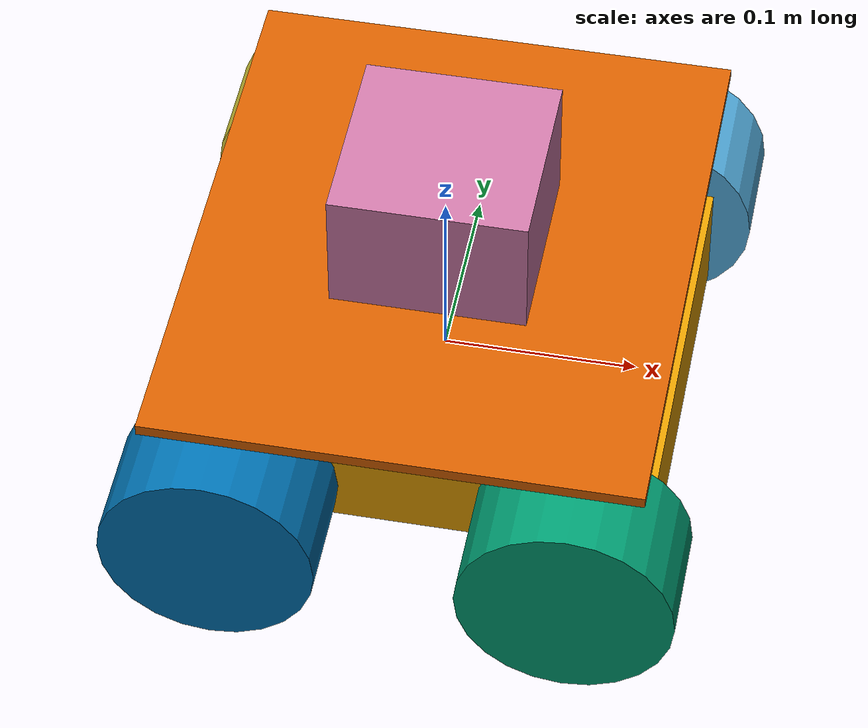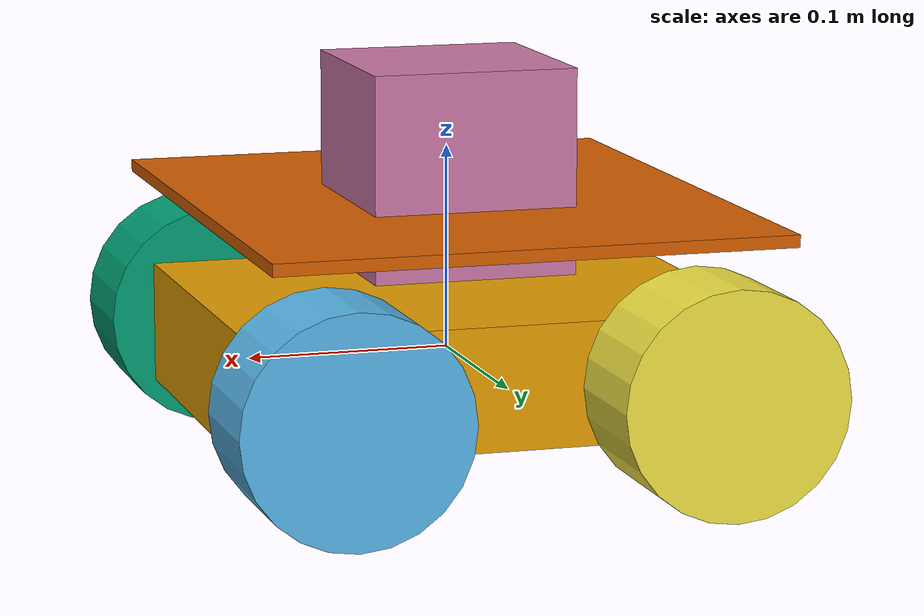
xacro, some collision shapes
<?xml version='1.0'?>
<robot name="kezbot" xmlns:xacro="http://ros.org/wiki/xacro">

    <xacro:include filename="$(find kezbot_description)/urdf/xacro/kezbot_body.xacro" />
    <xacro:include filename="$(find kezbot_description)/urdf/xacro/kezbot_wheel.xacro" />
    <xacro:include filename="$(find kezbot_description)/urdf/xacro/kezbot_lid.xacro" />
    <xacro:include filename="$(find kezbot_description)/urdf/laser/hokuyo.xacro" />

    <xacro:kezbot_body prefix="base_link" />

    <xacro:kezbot_wheel
    	prefix="front" suffix="left"
    	xyz=" 0.09  0.137 0" rpy="0 0 0"
    	radius="0.055"
    	parent="base_link"
    	/>
    <xacro:kezbot_wheel
    	prefix="front" suffix="right"
    	xyz=" 0.09 -0.137 0" rpy="0 0 0"
    	radius="0.055"
		  parent="base_link"
    	/>
    <xacro:kezbot_wheel
    	prefix="rear" suffix="left"
    	xyz="-0.09  0.137 0" rpy="0 0 0"
    	radius="0.055"
		  parent="base_link"
    	/>
    <xacro:kezbot_wheel
    	prefix="rear" suffix="right"
    	xyz="-0.09 -0.137 0" rpy="0 0 0"
    	radius="0.055"
		  parent="base_link"
    	/>

    <xacro:kezbot_lid
    	prefix="upper"
    	xyz="0 0 0.0725"
    	parent="base_link"
    	/>

    <xacro:laser
      name="base_scan"
      parent="upper_lid"
      xyz="0.0 0.0 0.02" rpy="0 0 0"
      meshes="package://kezbot_description/meshes/laser/"
      />

    <gazebo>
        <plugin name="gazebo_ros_control" filename="libgazebo_ros_control.so">
        </plugin>
    </gazebo>

</robot>

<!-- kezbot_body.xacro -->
<robot xmlns:xacro="http://ros.org/wiki/xacro">

	<xacro:macro name="kezbot_body" params="prefix">
		<link name="${prefix}">
			<pose>0 0 0.1 0 0 0</pose>
			<inertial>
				<mass value="3.0"/>
				<origin xyz="0.0 0 0.1" rpy="0 0 0"/>
				<inertia
					ixx="0.1" ixy="0" ixz="0"
					iyy="0.1" iyz="0"
					izz="0.1"
					/>
			</inertial>
			<collision name="collision">
				<geometry>
					<box size="0.25 0.2 0.06" />
				</geometry>
			</collision>
			<visual name="chassis_visual">
				<origin xyz="0 0 0" rpy="0 0 0"/>
				<geometry>
					<box size="0.25 0.2 0.06" />
				</geometry>
			</visual>
		</link>
	</xacro:macro>

</robot>

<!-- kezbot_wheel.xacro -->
<robot xmlns:xacro="http://ros.org/wiki/xacro">

	<xacro:macro name="kezbot_wheel" params="prefix suffix parent xyz rpy radius">

		<joint name="${prefix}_${suffix}_wheel_joint" type="continuous">
			<origin xyz="${xyz}" rpy="${rpy}" />
			<parent link="${parent}" />
			<child link="${prefix}_${suffix}_wheel_link" />
			<axis xyz="0 1 0" />
		</joint>

		<link name="${prefix}_${suffix}_wheel_link">
			<collision name="collision">
				<origin xyz="0 0 0" rpy="0 1.5707 1.5707"/>
				<geometry>
					<cylinder radius="${radius}" length="0.06"/>
				</geometry>
			</collision>
			<visual name="${prefix}_${suffix}_wheel_link">
				<origin xyz="0 0 0" rpy="0 1.5707 1.5707"/>
				<geometry>
					<cylinder radius="${radius}" length="0.06"/>
				</geometry>
			</visual>
			<inertial>
				<origin xyz="0 0 0" rpy="0 1.5707 1.5707"/>
				<mass value="0.01"/>
				<inertia
				ixx=".01" ixy="0.0" ixz="0.0"
				iyy=".01" iyz="0.0"
				izz=".01"/>
			</inertial>
		</link>

		<transmission name="${prefix}_${suffix}_wheel_trans">
			<type>transmission_interface/SimpleTransmission</type>
			<actuator name="${prefix}_${suffix}_wheel_motor">
				<mechanicalReduction>1</mechanicalReduction>
			</actuator>
			<joint name="${prefix}_${suffix}_wheel_joint">
				<hardwareInterface>hardware_interface/VelocityJointInterface</hardwareInterface>
			</joint>
		</transmission>

	    <gazebo reference="${prefix}_${suffix}_wheel_link">
			<mu1 value="0.3"/>
			<mu2 value="0.3"/>
			<kp  value="10000.0" />
			<kd  value="1.0" />
	        <material value="Gazebo/Grey"/>
	    </gazebo>

	</xacro:macro>

</robot>

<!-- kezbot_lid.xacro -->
<robot xmlns:xacro="http://ros.org/wiki/xacro">

	<xacro:macro name="kezbot_lid" params="prefix xyz parent">

		<joint name="${prefix}_lid_joint" type="fixed">
			<axis xyz="0 0.0 0" />
			<origin xyz="${xyz}" rpy="0 0 0" />
			<parent link="${parent}" />
			<child 	link="${prefix}_lid"/>
		</joint>

		<link name='${prefix}_lid'>
			<inertial>
				<mass value="0.0001"/>
				<origin xyz="0.0 0 0.1" rpy="0 0 0"/>
				<inertia
					ixx="0.1" ixy="0" ixz="0"
					iyy="0.1" iyz="0"
					izz="0.1"
					/>
			</inertial>
			<collision name="collision">
				<geometry>
					<box size="0.25 0.3 0.006" />
				</geometry>
			</collision>
			<visual name="${prefix}_lid_visual">
				<origin xyz="0 0 0" rpy="0 0 0"/>
				<geometry>
					<box size="0.25 0.3 0.006" />
				</geometry>
			</visual>
		</link>

	</xacro:macro>

</robot>

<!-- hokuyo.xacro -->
<robot xmlns:xacro="http://www.ros.org/wiki/xacro">

<!-- Front Laser -->
<xacro:macro name="laser" params="name parent xyz rpy meshes" >

  <joint name="${parent}_${name}_joint" type="fixed">
      <axis xyz="0 0 1" />
      <origin xyz="${xyz}" rpy="${rpy}"/>
      <parent link="${parent}"/>
      <child link="${name}"/>
    </joint>

    <link name="${name}">
      <collision>
        <origin xyz="0 0 0" rpy="0 0 0"/>
        <geometry>
          <box size="0.1 0.1 0.1"/>
        </geometry>
      </collision>
      <visual>
        <origin xyz="0 0 0" rpy="0 0 0"/>
        <geometry>
          <mesh filename="${meshes}/hokuyo.dae"/>
        </geometry>
      </visual>
      <inertial>
        <mass value="1e-5" />
        <origin xyz="0 0 0" rpy="0 0 0"/>
        <inertia ixx="1e-6" ixy="0" ixz="0" iyy="1e-6" iyz="0" izz="1e-6" />
      </inertial>
    </link>

    <gazebo reference="${name}">
        <sensor name="laser" type="ray">
        <pose>0 0 0 0 0 0</pose>
          <ray>
            <scan>
              <horizontal>
                <!-- The URG-04LX-UG01  has  683 steps with 0.35139 Degree resolution -->
                <resolution>1</resolution>
                <max_angle>3.141592</max_angle> <!-- 120 Degree -->
                <min_angle>-3.141591</min_angle> <!-- -120 Degree -->
                <samples>360</samples>
              </horizontal>
            </scan>
            <range>
              <min>0.08</min>
              <max>5</max>
              <resolution>0.01</resolution>
            </range>
          </ray>

          <plugin name="laser" filename="libgazebo_ros_laser.so" >
            <robotNamespace></robotNamespace>
            <topicName>${name}</topicName>
            <frameName>${name}</frameName>
          </plugin>

          <always_on>1</always_on>
          <update_rate>10</update_rate>
          <visualize>false</visualize>
        </sensor>
    </gazebo>
</xacro:macro>

</robot>
